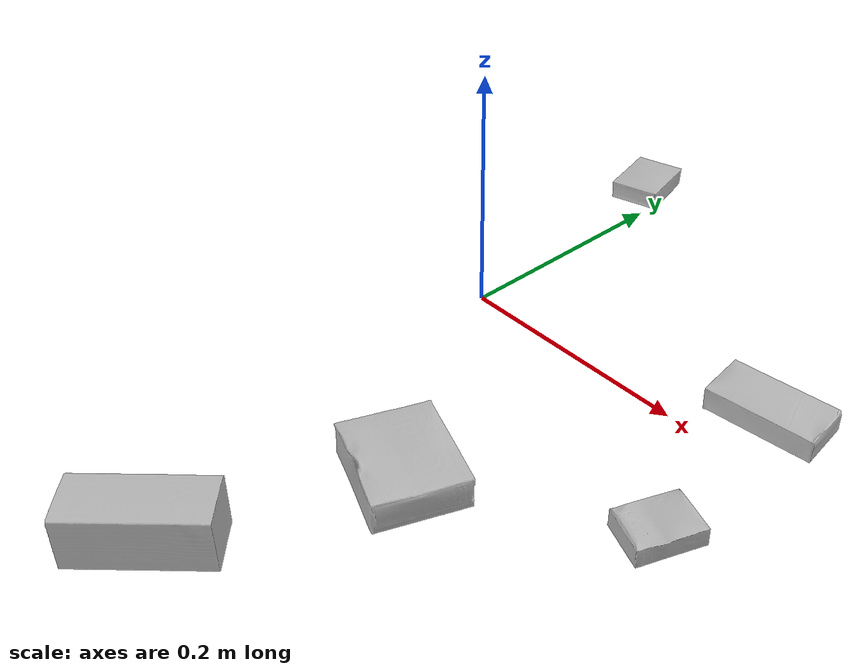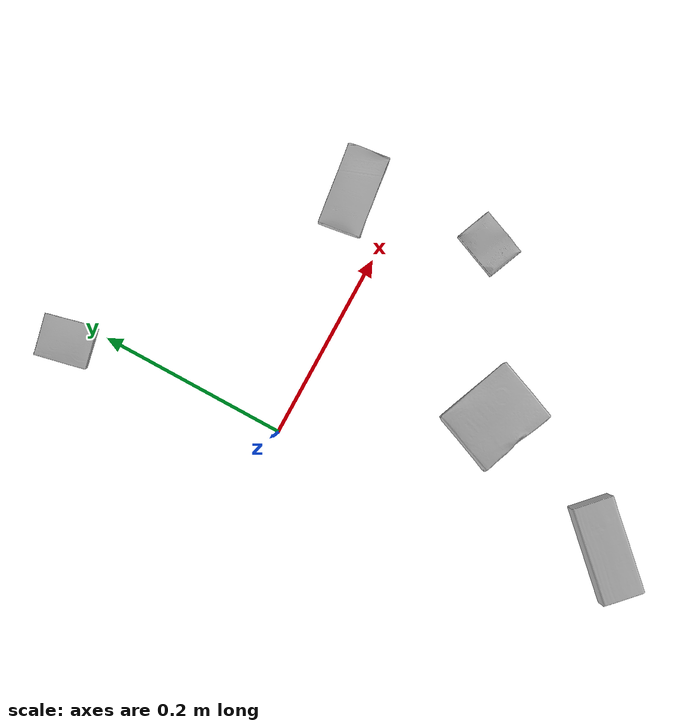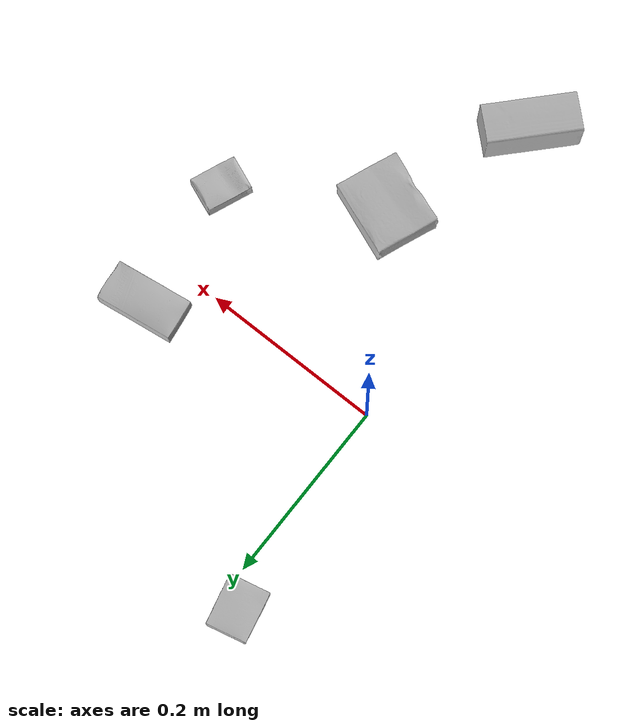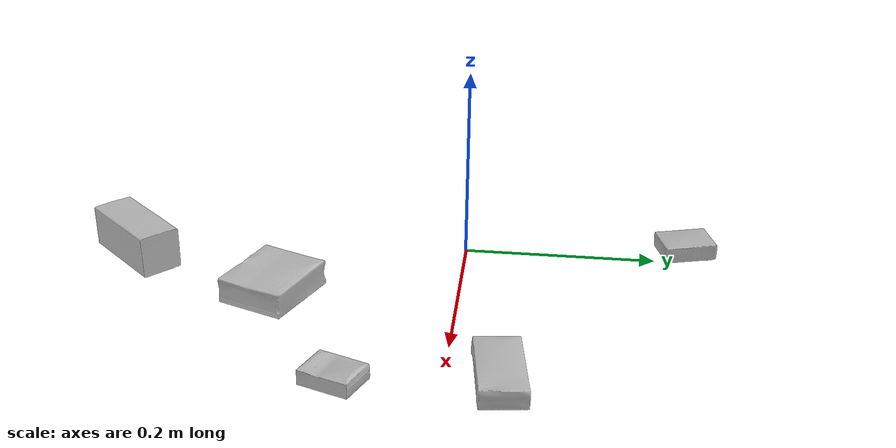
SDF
<sdf version="1.4">
  <world name="default">
    <light name="light1" type="point">
      <pose>0 0 1 0 0 0</pose>
      <diffuse>3 3 3 1</diffuse>
      <specular>3 3 3 1</specular>
    </light>
    <light name="light2" type="point">
      <pose>0 0.5 2 0 0 0</pose>
      <diffuse>1 1 1 1</diffuse>
      <specular>1 1 1 1</specular>
    </light>
    <light name="light3" type="point">
      <pose>0 0.5 2 0 0 0</pose>
      <diffuse>3 3 3 1</diffuse>
      <specular>3 3 3 1</specular>
    </light>
    <scene>
      <ambient>0.7 0.7 0.7</ambient>
    </scene>
    <model name="box1">
      <link name="link_box1">
        <collision name="default">
          <geometry>
            <mesh>
              <uri>model://gelatin_box/collision_meshes/collision.obj</uri>
              <scale>1.0 1.0 1.0</scale>
            </mesh>
          </geometry>
          <surface>
            <friction>
              <ode>
                <mu>0.5</mu>
                <mu2>0.5</mu2>
              </ode>
            </friction>
          <contact>
        <ode>
            <max_vel>0</max_vel>
            <min_depth>0.0001</min_depth>
            <kp>1e8</kp>
        </ode>
    </contact></surface>
        </collision>
        <visual name="default">
          <geometry>
            <mesh>
              <uri>model://gelatin_box/visual_meshes/visual.dae</uri>
              <scale>1.0 1.0 1.0</scale>
            </mesh>
          </geometry>
        </visual>
        <inertial>
          <mass>0.2001359760761261</mass>
          <pose>0.0004319618456065655 0.00011156872642459348 -0.00036403213744051754 -0.0010503718728910522 -0.00475581915504666 0.01644056319729456</pose>
          <inertia>
            <ixx>0.00014127967</ixx>
            <iyy>0.00010091532</iyy>
            <izz>0.00021505913</izz>
            <ixy>0</ixy>
            <ixz>0</ixz>
            <iyz>0</iyz>
          </inertia>
        </inertial>
      </link>
      <pose>0.12008468806743622 -0.18521857261657715 0.015168318524956703 0.005597462948700859 -0.007304536129069821 -1.9502267202492853</pose>
    </model>
    <model name="box2">
      <link name="link_box2">
        <collision name="default">
          <geometry>
            <mesh>
              <uri>model://cracker_box/collision_meshes/collision.obj</uri>
              <scale>0.25 0.25 0.25</scale>
            </mesh>
          </geometry>
          <surface>
            <friction>
              <ode>
                <mu>0.5</mu>
                <mu2>0.5</mu2>
              </ode>
            </friction>
          <contact>
        <ode>
            <max_vel>0</max_vel>
            <min_depth>0.0001</min_depth>
            <kp>1e8</kp>
        </ode>
    </contact></surface>
        </collision>
        <visual name="default">
          <geometry>
            <mesh>
              <uri>model://cracker_box/visual_meshes/visual.dae</uri>
              <scale>0.25 0.25 0.25</scale>
            </mesh>
          </geometry>
        </visual>
        <inertial>
          <mass>0.052757441997528076</mass>
          <pose>0.00023660421720705926 6.358561950037256e-05 -0.0004257383698131889 -0.0003162076882876523 -0.011106491463043667 0.002546795002652857</pose>
          <inertia>
            <ixx>8.38696e-06</ixx>
            <iyy>1.384852e-05</iyy>
            <izz>1.9763109e-05</izz>
            <ixy>0</ixy>
            <ixz>0</ixz>
            <iyz>0</iyz>
          </inertia>
        </inertial>
      </link>
      <pose>0.2711246907711029 -0.09626255184412003 0.009096034802496433 -0.014049741043477218 -0.0050166099570940976 1.1902604043214884</pose>
    </model>
    <model name="box3">
      <link name="link_box3">
        <collision name="default">
          <geometry>
            <mesh>
              <uri>model://wood_block/collision_meshes/collision.obj</uri>
              <scale>0.5 0.5 0.5</scale>
            </mesh>
          </geometry>
          <surface>
            <friction>
              <ode>
                <mu>0.5</mu>
                <mu2>0.5</mu2>
              </ode>
            </friction>
          <contact>
        <ode>
            <max_vel>0</max_vel>
            <min_depth>0.0001</min_depth>
            <kp>1e8</kp>
        </ode>
    </contact></surface>
        </collision>
        <visual name="default">
          <geometry>
            <mesh>
              <uri>model://wood_block/visual_meshes/visual.dae</uri>
              <scale>0.5 0.5 0.5</scale>
            </mesh>
          </geometry>
        </visual>
        <inertial>
          <mass>0.15567830204963684</mass>
          <pose>-2.9066577553749084e-06 -0.000285404734313488 0.00013204292918089777 -0.052210429644919926 -0.005192696852900695 -0.006861378081336091</pose>
          <inertia>
            <ixx>5.2080282e-05</ixx>
            <iyy>0.00016452163</iyy>
            <izz>0.00016390622</izz>
            <ixy>0</ixy>
            <ixz>0</ixz>
            <iyz>0</iyz>
          </inertia>
        </inertial>
      </link>
      <pose>0.0564451701939106 -0.34752365946769714 0.022629257291555405 -0.00520840604264072 0.005718714379690736 -2.3220021528157737</pose>
    </model>
    <model name="box4">
      <link name="link_box4">
        <collision name="default">
          <geometry>
            <mesh>
              <uri>model://pudding_box/collision_meshes/collision.obj</uri>
              <scale>0.5 0.5 0.5</scale>
            </mesh>
          </geometry>
          <surface>
            <friction>
              <ode>
                <mu>0.5</mu>
                <mu2>0.5</mu2>
              </ode>
            </friction>
          <contact>
        <ode>
            <max_vel>0</max_vel>
            <min_depth>0.0001</min_depth>
            <kp>1e8</kp>
        </ode>
    </contact></surface>
        </collision>
        <visual name="default">
          <geometry>
            <mesh>
              <uri>model://pudding_box/visual_meshes/visual.dae</uri>
              <scale>0.5 0.5 0.5</scale>
            </mesh>
          </geometry>
        </visual>
        <inertial>
          <mass>0.0498165600001812</mass>
          <pose>0.00024474109522998333 0.00040339428232982755 -0.0002594413817860186 0.00521310227074754 -0.006603796865596143 0.02007982702575369</pose>
          <inertia>
            <ixx>1.4078764e-05</ixx>
            <iyy>9.472293e-06</iyy>
            <izz>2.0790974e-05</izz>
            <ixy>0</ixy>
            <ixz>0</ixz>
            <iyz>0</iyz>
          </inertia>
        </inertial>
      </link>
      <pose>-0.022327471524477005 0.23324920237064362 0.009862901642918587 0.02234850282694905 -0.011391707655758752 0.22273366882260678</pose>
    </model>
    <model name="box5">
      <link name="link_box5">
        <collision name="default">
          <geometry>
            <mesh>
              <uri>model://sugar_box/collision_meshes/collision.obj</uri>
              <scale>0.5 0.5 0.5</scale>
            </mesh>
          </geometry>
          <surface>
            <friction>
              <ode>
                <mu>0.5</mu>
                <mu2>0.5</mu2>
              </ode>
            </friction>
          <contact>
        <ode>
            <max_vel>0</max_vel>
            <min_depth>0.0001</min_depth>
            <kp>1e8</kp>
        </ode>
    </contact></surface>
        </collision>
        <visual name="default">
          <geometry>
            <mesh>
              <uri>model://sugar_box/visual_meshes/visual.dae</uri>
              <scale>0.5 0.5 0.5</scale>
            </mesh>
          </geometry>
        </visual>
        <inertial>
          <mass>0.08508674055337906</mass>
          <pose>0.0005171863595023751 1.924554817378521e-05 -0.00018182402709499002 -0.0004046257768003499 0.0010506634050152445 0.002615378556389427</pose>
          <inertia>
            <ixx>1.7723507e-05</ixx>
            <iyy>5.7286023e-05</iyy>
            <izz>6.85782e-05</izz>
            <ixy>0</ixy>
            <ixz>0</ixz>
            <iyz>0</iyz>
          </inertia>
        </inertial>
      </link>
      <pose>0.2525748014450073 0.05037800222635269 0.011399305425584316 0.0007745251485882262 -0.023432984603000015 -3.0119958037673036</pose>
    </model>
  <physics type="ode">
      <max_contacts>50</max_contacts>
      <ode>
        <solver>
          <type>quick</type>
          <iters>75</iters>
        </solver>
        <constraints>
          <contact_max_correcting_vel>0</contact_max_correcting_vel>
          <contact_surface_layer>0</contact_surface_layer>
        </constraints>
      </ode>
    </physics></world>
</sdf>
